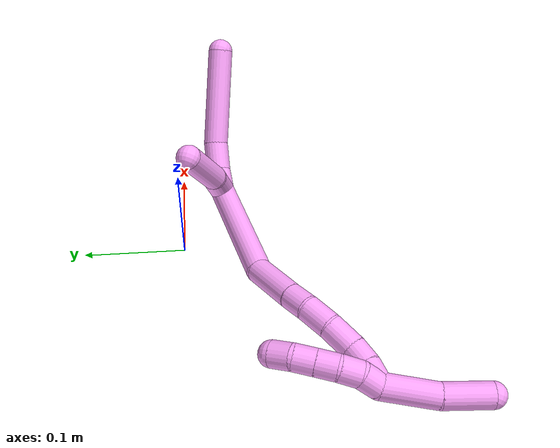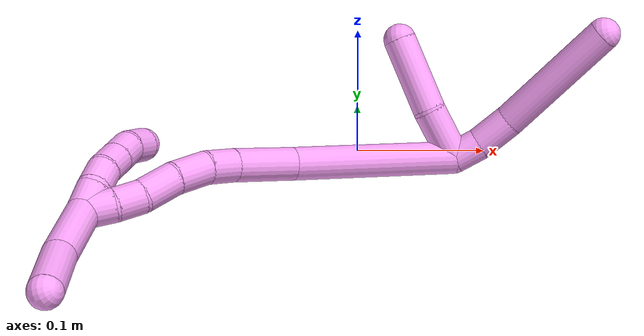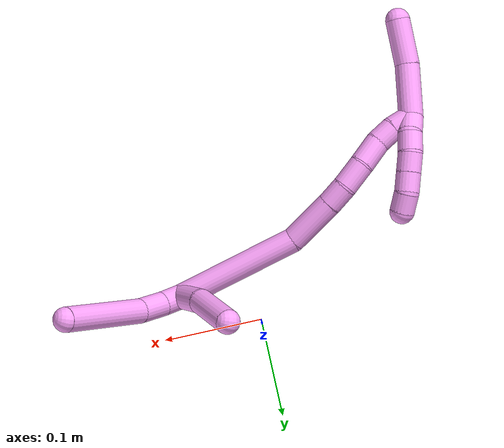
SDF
<sdf version="1.7">
 <world name="default">
  <model name="4">
   <static>0</static>
   <link name="4">
    <collision name="collision-cylinder-e_1_2_8">
     <pose>0.004374 0.002686 -0.009799 -2.87406 0.406539 -1.9848</pose>
     <geometry><cylinder><radius>0.0125</radius><length>0.022123</length></cylinder></geometry>
     <surface>
      <friction><ode><mu>1.16</mu><mu2>1.16</mu2><slip1>0</slip1><slip2>0</slip2></ode></friction>
      <contact><ode><kp>1e+06</kp><kd>1</kd><max_vel>0</max_vel><min_depth>0.001</min_depth></ode></contact>
     </surface>
    </collision>
    <visual name="visual-cylinder-e_1_2_8">
     <pose>0.004374 0.002686 -0.009799 -2.87406 0.406539 -1.9848</pose>
     <geometry><cylinder><radius>0.0125</radius><length>0.022123</length></cylinder></geometry>
     <material><ambient>1 0.65098 0.996078 1</ambient></material>
    </visual>
    <collision name="collision-cylinder-e_2_8_9">
     <pose>0.01523 0.005526 -0.032919 -3.12998 0.45278 -3.0912</pose>
     <geometry><cylinder><radius>0.0125</radius><length>0.029631</length></cylinder></geometry>
     <surface>
      <friction><ode><mu>1.16</mu><mu2>1.16</mu2><slip1>0</slip1><slip2>0</slip2></ode></friction>
      <contact><ode><kp>1e+06</kp><kd>1</kd><max_vel>0</max_vel><min_depth>0.001</min_depth></ode></contact>
     </surface>
    </collision>
    <visual name="visual-cylinder-e_2_8_9">
     <pose>0.01523 0.005526 -0.032919 -3.12998 0.45278 -3.0912</pose>
     <geometry><cylinder><radius>0.0125</radius><length>0.029631</length></cylinder></geometry>
     <material><ambient>1 0.65098 0.996078 1</ambient></material>
    </visual>
    <collision name="collision-cylinder-e_3_9_6">
     <pose>0.040162 -0.002845 -0.090961 2.9532 0.385061 2.23904</pose>
     <geometry><cylinder><radius>0.0125</radius><length>0.098246</length></cylinder></geometry>
     <surface>
      <friction><ode><mu>1.16</mu><mu2>1.16</mu2><slip1>0</slip1><slip2>0</slip2></ode></friction>
      <contact><ode><kp>1e+06</kp><kd>1</kd><max_vel>0</max_vel><min_depth>0.001</min_depth></ode></contact>
     </surface>
    </collision>
    <visual name="visual-cylinder-e_3_9_6">
     <pose>0.040162 -0.002845 -0.090961 2.9532 0.385061 2.23904</pose>
     <geometry><cylinder><radius>0.0125</radius><length>0.098246</length></cylinder></geometry>
     <material><ambient>1 0.65098 0.996078 1</ambient></material>
    </visual>
    <collision name="collision-cylinder-e_1_2_10">
     <pose>0.013643 -0.015471 0.001555 1.47059 0.720204 0.656483</pose>
     <geometry><cylinder><radius>0.0125</radius><length>0.041372</length></cylinder></geometry>
     <surface>
      <friction><ode><mu>1.16</mu><mu2>1.16</mu2><slip1>0</slip1><slip2>0</slip2></ode></friction>
      <contact><ode><kp>1e+06</kp><kd>1</kd><max_vel>0</max_vel><min_depth>0.001</min_depth></ode></contact>
     </surface>
    </collision>
    <visual name="visual-cylinder-e_1_2_10">
     <pose>0.013643 -0.015471 0.001555 1.47059 0.720204 0.656483</pose>
     <geometry><cylinder><radius>0.0125</radius><length>0.041372</length></cylinder></geometry>
     <material><ambient>1 0.65098 0.996078 1</ambient></material>
    </visual>
    <collision name="collision-cylinder-e_2_10_5">
     <pose>0.051037 -0.047877 0.006011 1.40119 0.944549 0.813525</pose>
     <geometry><cylinder><radius>0.0125</radius><length>0.058628</length></cylinder></geometry>
     <surface>
      <friction><ode><mu>1.16</mu><mu2>1.16</mu2><slip1>0</slip1><slip2>0</slip2></ode></friction>
      <contact><ode><kp>1e+06</kp><kd>1</kd><max_vel>0</max_vel><min_depth>0.001</min_depth></ode></contact>
     </surface>
    </collision>
    <visual name="visual-cylinder-e_2_10_5">
     <pose>0.051037 -0.047877 0.006011 1.40119 0.944549 0.813525</pose>
     <geometry><cylinder><radius>0.0125</radius><length>0.058628</length></cylinder></geometry>
     <material><ambient>1 0.65098 0.996078 1</ambient></material>
    </visual>
    <collision name="collision-cylinder-e_1_2_11">
     <pose>-0.011288 -0.044035 0.044019 0.785582 -0.179352 -0.074475</pose>
     <geometry><cylinder><radius>0.0125</radius><length>0.126558</length></cylinder></geometry>
     <surface>
      <friction><ode><mu>1.16</mu><mu2>1.16</mu2><slip1>0</slip1><slip2>0</slip2></ode></friction>
      <contact><ode><kp>1e+06</kp><kd>1</kd><max_vel>0</max_vel><min_depth>0.001</min_depth></ode></contact>
     </surface>
    </collision>
    <visual name="visual-cylinder-e_1_2_11">
     <pose>-0.011288 -0.044035 0.044019 0.785582 -0.179352 -0.074475</pose>
     <geometry><cylinder><radius>0.0125</radius><length>0.126558</length></cylinder></geometry>
     <material><ambient>1 0.65098 0.996078 1</ambient></material>
    </visual>
    <collision name="collision-cylinder-e_2_11_12">
     <pose>-0.030759 -0.10997 0.098962 1.1081 -0.32264 -0.200689</pose>
     <geometry><cylinder><radius>0.0125</radius><length>0.051608</length></cylinder></geometry>
     <surface>
      <friction><ode><mu>1.16</mu><mu2>1.16</mu2><slip1>0</slip1><slip2>0</slip2></ode></friction>
      <contact><ode><kp>1e+06</kp><kd>1</kd><max_vel>0</max_vel><min_depth>0.001</min_depth></ode></contact>
     </surface>
    </collision>
    <visual name="visual-cylinder-e_2_11_12">
     <pose>-0.030759 -0.10997 0.098962 1.1081 -0.32264 -0.200689</pose>
     <geometry><cylinder><radius>0.0125</radius><length>0.051608</length></cylinder></geometry>
     <material><ambient>1 0.65098 0.996078 1</ambient></material>
    </visual>
    <collision name="collision-cylinder-e_3_12_13">
     <pose>-0.043338 -0.141591 0.114428 1.13367 -0.388956 -0.249444</pose>
     <geometry><cylinder><radius>0.0125</radius><length>0.023195</length></cylinder></geometry>
     <surface>
      <friction><ode><mu>1.16</mu><mu2>1.16</mu2><slip1>0</slip1><slip2>0</slip2></ode></friction>
      <contact><ode><kp>1e+06</kp><kd>1</kd><max_vel>0</max_vel><min_depth>0.001</min_depth></ode></contact>
     </surface>
    </collision>
    <visual name="visual-cylinder-e_3_12_13">
     <pose>-0.043338 -0.141591 0.114428 1.13367 -0.388956 -0.249444</pose>
     <geometry><cylinder><radius>0.0125</radius><length>0.023195</length></cylinder></geometry>
     <material><ambient>1 0.65098 0.996078 1</ambient></material>
    </visual>
    <collision name="collision-cylinder-e_4_13_14">
     <pose>-0.055305 -0.161324 0.124969 1.03098 -0.575322 -0.332183</pose>
     <geometry><cylinder><radius>0.0125</radius><length>0.027818</length></cylinder></geometry>
     <surface>
      <friction><ode><mu>1.16</mu><mu2>1.16</mu2><slip1>0</slip1><slip2>0</slip2></ode></friction>
      <contact><ode><kp>1e+06</kp><kd>1</kd><max_vel>0</max_vel><min_depth>0.001</min_depth></ode></contact>
     </surface>
    </collision>
    <visual name="visual-cylinder-e_4_13_14">
     <pose>-0.055305 -0.161324 0.124969 1.03098 -0.575322 -0.332183</pose>
     <geometry><cylinder><radius>0.0125</radius><length>0.027818</length></cylinder></geometry>
     <material><ambient>1 0.65098 0.996078 1</ambient></material>
    </visual>
    <collision name="collision-cylinder-e_5_14_15">
     <pose>-0.072147 -0.179636 0.137807 0.88163 -0.711582 -0.347102</pose>
     <geometry><cylinder><radius>0.0125</radius><length>0.028404</length></cylinder></geometry>
     <surface>
      <friction><ode><mu>1.16</mu><mu2>1.16</mu2><slip1>0</slip1><slip2>0</slip2></ode></friction>
      <contact><ode><kp>1e+06</kp><kd>1</kd><max_vel>0</max_vel><min_depth>0.001</min_depth></ode></contact>
     </surface>
    </collision>
    <visual name="visual-cylinder-e_5_14_15">
     <pose>-0.072147 -0.179636 0.137807 0.88163 -0.711582 -0.347102</pose>
     <geometry><cylinder><radius>0.0125</radius><length>0.028404</length></cylinder></geometry>
     <material><ambient>1 0.65098 0.996078 1</ambient></material>
    </visual>
    <collision name="collision-cylinder-e_6_15_16">
     <pose>-0.086234 -0.194703 0.150734 0.838106 -0.486424 -0.220153</pose>
     <geometry><cylinder><radius>0.0125</radius><length>0.020593</length></cylinder></geometry>
     <surface>
      <friction><ode><mu>1.16</mu><mu2>1.16</mu2><slip1>0</slip1><slip2>0</slip2></ode></friction>
      <contact><ode><kp>1e+06</kp><kd>1</kd><max_vel>0</max_vel><min_depth>0.001</min_depth></ode></contact>
     </surface>
    </collision>
    <visual name="visual-cylinder-e_6_15_16">
     <pose>-0.086234 -0.194703 0.150734 0.838106 -0.486424 -0.220153</pose>
     <geometry><cylinder><radius>0.0125</radius><length>0.020593</length></cylinder></geometry>
     <material><ambient>1 0.65098 0.996078 1</ambient></material>
    </visual>
    <collision name="collision-cylinder-e_7_16_1">
     <pose>-0.094653 -0.208237 0.164586 0.71698 -0.336754 -0.127209</pose>
     <geometry><cylinder><radius>0.0125</radius><length>0.021824</length></cylinder></geometry>
     <surface>
      <friction><ode><mu>1.16</mu><mu2>1.16</mu2><slip1>0</slip1><slip2>0</slip2></ode></friction>
      <contact><ode><kp>1e+06</kp><kd>1</kd><max_vel>0</max_vel><min_depth>0.001</min_depth></ode></contact>
     </surface>
    </collision>
    <visual name="visual-cylinder-e_7_16_1">
     <pose>-0.094653 -0.208237 0.164586 0.71698 -0.336754 -0.127209</pose>
     <geometry><cylinder><radius>0.0125</radius><length>0.021824</length></cylinder></geometry>
     <material><ambient>1 0.65098 0.996078 1</ambient></material>
    </visual>
    <collision name="collision-cylinder-e_1_1_17">
     <pose>-0.088602 -0.213245 0.170441 -2.39687 1.30821 -2.19925</pose>
     <geometry><cylinder><radius>0.0125</radius><length>0.02</length></cylinder></geometry>
     <surface>
      <friction><ode><mu>1.16</mu><mu2>1.16</mu2><slip1>0</slip1><slip2>0</slip2></ode></friction>
      <contact><ode><kp>1e+06</kp><kd>1</kd><max_vel>0</max_vel><min_depth>0.001</min_depth></ode></contact>
     </surface>
    </collision>
    <visual name="visual-cylinder-e_1_1_17">
     <pose>-0.088602 -0.213245 0.170441 -2.39687 1.30821 -2.19925</pose>
     <geometry><cylinder><radius>0.0125</radius><length>0.02</length></cylinder></geometry>
     <material><ambient>1 0.65098 0.996078 1</ambient></material>
    </visual>
    <collision name="collision-cylinder-e_2_17_18">
     <pose>-0.069772 -0.207512 0.168798 -1.50411 1.16113 -1.10076</pose>
     <geometry><cylinder><radius>0.0125</radius><length>0.02</length></cylinder></geometry>
     <surface>
      <friction><ode><mu>1.16</mu><mu2>1.16</mu2><slip1>0</slip1><slip2>0</slip2></ode></friction>
      <contact><ode><kp>1e+06</kp><kd>1</kd><max_vel>0</max_vel><min_depth>0.001</min_depth></ode></contact>
     </surface>
    </collision>
    <visual name="visual-cylinder-e_2_17_18">
     <pose>-0.069772 -0.207512 0.168798 -1.50411 1.16113 -1.10076</pose>
     <geometry><cylinder><radius>0.0125</radius><length>0.02</length></cylinder></geometry>
     <material><ambient>1 0.65098 0.996078 1</ambient></material>
    </visual>
    <collision name="collision-cylinder-e_3_18_19">
     <pose>-0.052642 -0.197498 0.16951 -1.49693 0.92024 -0.862734</pose>
     <geometry><cylinder><radius>0.0125</radius><length>0.02</length></cylinder></geometry>
     <surface>
      <friction><ode><mu>1.16</mu><mu2>1.16</mu2><slip1>0</slip1><slip2>0</slip2></ode></friction>
      <contact><ode><kp>1e+06</kp><kd>1</kd><max_vel>0</max_vel><min_depth>0.001</min_depth></ode></contact>
     </surface>
    </collision>
    <visual name="visual-cylinder-e_3_18_19">
     <pose>-0.052642 -0.197498 0.16951 -1.49693 0.92024 -0.862734</pose>
     <geometry><cylinder><radius>0.0125</radius><length>0.02</length></cylinder></geometry>
     <material><ambient>1 0.65098 0.996078 1</ambient></material>
    </visual>
    <collision name="collision-cylinder-e_4_19_20">
     <pose>-0.036757 -0.185383 0.170449 -1.49008 0.915334 -0.852866</pose>
     <geometry><cylinder><radius>0.0125</radius><length>0.02</length></cylinder></geometry>
     <surface>
      <friction><ode><mu>1.16</mu><mu2>1.16</mu2><slip1>0</slip1><slip2>0</slip2></ode></friction>
      <contact><ode><kp>1e+06</kp><kd>1</kd><max_vel>0</max_vel><min_depth>0.001</min_depth></ode></contact>
     </surface>
    </collision>
    <visual name="visual-cylinder-e_4_19_20">
     <pose>-0.036757 -0.185383 0.170449 -1.49008 0.915334 -0.852866</pose>
     <geometry><cylinder><radius>0.0125</radius><length>0.02</length></cylinder></geometry>
     <material><ambient>1 0.65098 0.996078 1</ambient></material>
    </visual>
    <collision name="collision-cylinder-e_5_20_4">
     <pose>-0.023258 -0.171028 0.171584 -1.49323 0.590899 -0.549017</pose>
     <geometry><cylinder><radius>0.0125</radius><length>0.02</length></cylinder></geometry>
     <surface>
      <friction><ode><mu>1.16</mu><mu2>1.16</mu2><slip1>0</slip1><slip2>0</slip2></ode></friction>
      <contact><ode><kp>1e+06</kp><kd>1</kd><max_vel>0</max_vel><min_depth>0.001</min_depth></ode></contact>
     </surface>
    </collision>
    <visual name="visual-cylinder-e_5_20_4">
     <pose>-0.023258 -0.171028 0.171584 -1.49323 0.590899 -0.549017</pose>
     <geometry><cylinder><radius>0.0125</radius><length>0.02</length></cylinder></geometry>
     <material><ambient>1 0.65098 0.996078 1</ambient></material>
    </visual>
    <collision name="collision-cylinder-e_1_1_21">
     <pose>-0.121606 -0.227632 0.168627 1.85746 -1.05738 -1.32636</pose>
     <geometry><cylinder><radius>0.0125</radius><length>0.053606</length></cylinder></geometry>
     <surface>
      <friction><ode><mu>1.16</mu><mu2>1.16</mu2><slip1>0</slip1><slip2>0</slip2></ode></friction>
      <contact><ode><kp>1e+06</kp><kd>1</kd><max_vel>0</max_vel><min_depth>0.001</min_depth></ode></contact>
     </surface>
    </collision>
    <visual name="visual-cylinder-e_1_1_21">
     <pose>-0.121606 -0.227632 0.168627 1.85746 -1.05738 -1.32636</pose>
     <geometry><cylinder><radius>0.0125</radius><length>0.053606</length></cylinder></geometry>
     <material><ambient>1 0.65098 0.996078 1</ambient></material>
    </visual>
    <collision name="collision-cylinder-e_2_21_3">
     <pose>-0.164163 -0.251117 0.157749 2.15352 -0.975702 -1.55592</pose>
     <geometry><cylinder><radius>0.0125</radius><length>0.046394</length></cylinder></geometry>
     <surface>
      <friction><ode><mu>1.16</mu><mu2>1.16</mu2><slip1>0</slip1><slip2>0</slip2></ode></friction>
      <contact><ode><kp>1e+06</kp><kd>1</kd><max_vel>0</max_vel><min_depth>0.001</min_depth></ode></contact>
     </surface>
    </collision>
    <visual name="visual-cylinder-e_2_21_3">
     <pose>-0.164163 -0.251117 0.157749 2.15352 -0.975702 -1.55592</pose>
     <geometry><cylinder><radius>0.0125</radius><length>0.046394</length></cylinder></geometry>
     <material><ambient>1 0.65098 0.996078 1</ambient></material>
    </visual>
    <collision name="collision-sphere-3">
     <pose>-0.183372 -0.261975 0.150593 0 -0 0</pose>
     <geometry><sphere><radius>0.0125</radius></sphere></geometry>
     <surface>
      <friction><ode><mu>1.16</mu><mu2>1.16</mu2><slip1>0</slip1><slip2>0</slip2></ode></friction>
      <contact><ode><kp>1e+06</kp><kd>1</kd><max_vel>0</max_vel><min_depth>0.001</min_depth></ode></contact>
     </surface>
    </collision>
    <visual name="visual-sphere-3">
     <pose>-0.183372 -0.261975 0.150593 0 -0 0</pose>
     <geometry><sphere><radius>0.0125</radius></sphere></geometry>
     <material><ambient>1 0.65098 0.996078 1</ambient></material>
    </visual>
    <collision name="collision-sphere-21">
     <pose>-0.144954 -0.240259 0.164905 0 -0 0</pose>
     <geometry><sphere><radius>0.0125</radius></sphere></geometry>
     <surface>
      <friction><ode><mu>1.16</mu><mu2>1.16</mu2><slip1>0</slip1><slip2>0</slip2></ode></friction>
      <contact><ode><kp>1e+06</kp><kd>1</kd><max_vel>0</max_vel><min_depth>0.001</min_depth></ode></contact>
     </surface>
    </collision>
    <visual name="visual-sphere-21">
     <pose>-0.144954 -0.240259 0.164905 0 -0 0</pose>
     <geometry><sphere><radius>0.0125</radius></sphere></geometry>
     <material><ambient>1 0.65098 0.996078 1</ambient></material>
    </visual>
    <collision name="collision-sphere-4">
     <pose>-0.017687 -0.162748 0.172227 0 -0 0</pose>
     <geometry><sphere><radius>0.0125</radius></sphere></geometry>
     <surface>
      <friction><ode><mu>1.16</mu><mu2>1.16</mu2><slip1>0</slip1><slip2>0</slip2></ode></friction>
      <contact><ode><kp>1e+06</kp><kd>1</kd><max_vel>0</max_vel><min_depth>0.001</min_depth></ode></contact>
     </surface>
    </collision>
    <visual name="visual-sphere-4">
     <pose>-0.017687 -0.162748 0.172227 0 -0 0</pose>
     <geometry><sphere><radius>0.0125</radius></sphere></geometry>
     <material><ambient>1 0.65098 0.996078 1</ambient></material>
    </visual>
    <collision name="collision-sphere-20">
     <pose>-0.028829 -0.179307 0.17094 0 -0 0</pose>
     <geometry><sphere><radius>0.0125</radius></sphere></geometry>
     <surface>
      <friction><ode><mu>1.16</mu><mu2>1.16</mu2><slip1>0</slip1><slip2>0</slip2></ode></friction>
      <contact><ode><kp>1e+06</kp><kd>1</kd><max_vel>0</max_vel><min_depth>0.001</min_depth></ode></contact>
     </surface>
    </collision>
    <visual name="visual-sphere-20">
     <pose>-0.028829 -0.179307 0.17094 0 -0 0</pose>
     <geometry><sphere><radius>0.0125</radius></sphere></geometry>
     <material><ambient>1 0.65098 0.996078 1</ambient></material>
    </visual>
    <collision name="collision-sphere-5">
     <pose>0.074789 -0.064811 0.008911 0 -0 0</pose>
     <geometry><sphere><radius>0.0125</radius></sphere></geometry>
     <surface>
      <friction><ode><mu>1.16</mu><mu2>1.16</mu2><slip1>0</slip1><slip2>0</slip2></ode></friction>
      <contact><ode><kp>1e+06</kp><kd>1</kd><max_vel>0</max_vel><min_depth>0.001</min_depth></ode></contact>
     </surface>
    </collision>
    <visual name="visual-sphere-5">
     <pose>0.074789 -0.064811 0.008911 0 -0 0</pose>
     <geometry><sphere><radius>0.0125</radius></sphere></geometry>
     <material><ambient>1 0.65098 0.996078 1</ambient></material>
    </visual>
    <collision name="collision-sphere-10">
     <pose>0.027286 -0.030942 0.003111 0 -0 0</pose>
     <geometry><sphere><radius>0.0125</radius></sphere></geometry>
     <surface>
      <friction><ode><mu>1.16</mu><mu2>1.16</mu2><slip1>0</slip1><slip2>0</slip2></ode></friction>
      <contact><ode><kp>1e+06</kp><kd>1</kd><max_vel>0</max_vel><min_depth>0.001</min_depth></ode></contact>
     </surface>
    </collision>
    <visual name="visual-sphere-10">
     <pose>0.027286 -0.030942 0.003111 0 -0 0</pose>
     <geometry><sphere><radius>0.0125</radius></sphere></geometry>
     <material><ambient>1 0.65098 0.996078 1</ambient></material>
    </visual>
    <collision name="collision-sphere-6">
     <pose>0.058614 -0.011371 -0.135681 0 -0 0</pose>
     <geometry><sphere><radius>0.0125</radius></sphere></geometry>
     <surface>
      <friction><ode><mu>1.16</mu><mu2>1.16</mu2><slip1>0</slip1><slip2>0</slip2></ode></friction>
      <contact><ode><kp>1e+06</kp><kd>1</kd><max_vel>0</max_vel><min_depth>0.001</min_depth></ode></contact>
     </surface>
    </collision>
    <visual name="visual-sphere-6">
     <pose>0.058614 -0.011371 -0.135681 0 -0 0</pose>
     <geometry><sphere><radius>0.0125</radius></sphere></geometry>
     <material><ambient>1 0.65098 0.996078 1</ambient></material>
    </visual>
    <collision name="collision-sphere-9">
     <pose>0.021711 0.005681 -0.046241 0 -0 0</pose>
     <geometry><sphere><radius>0.0125</radius></sphere></geometry>
     <surface>
      <friction><ode><mu>1.16</mu><mu2>1.16</mu2><slip1>0</slip1><slip2>0</slip2></ode></friction>
      <contact><ode><kp>1e+06</kp><kd>1</kd><max_vel>0</max_vel><min_depth>0.001</min_depth></ode></contact>
     </surface>
    </collision>
    <visual name="visual-sphere-9">
     <pose>0.021711 0.005681 -0.046241 0 -0 0</pose>
     <geometry><sphere><radius>0.0125</radius></sphere></geometry>
     <material><ambient>1 0.65098 0.996078 1</ambient></material>
    </visual>
    <collision name="collision-sphere-2">
     <geometry><sphere><radius>0.0125</radius></sphere></geometry>
     <surface>
      <friction><ode><mu>1.16</mu><mu2>1.16</mu2><slip1>0</slip1><slip2>0</slip2></ode></friction>
      <contact><ode><kp>1e+06</kp><kd>1</kd><max_vel>0</max_vel><min_depth>0.001</min_depth></ode></contact>
     </surface>
    </collision>
    <visual name="visual-sphere-2">
     <geometry><sphere><radius>0.0125</radius></sphere></geometry>
     <material><ambient>1 0.65098 0.996078 1</ambient></material>
    </visual>
    <collision name="collision-sphere-19">
     <pose>-0.044684 -0.191458 0.169957 0 -0 0</pose>
     <geometry><sphere><radius>0.0125</radius></sphere></geometry>
     <surface>
      <friction><ode><mu>1.16</mu><mu2>1.16</mu2><slip1>0</slip1><slip2>0</slip2></ode></friction>
      <contact><ode><kp>1e+06</kp><kd>1</kd><max_vel>0</max_vel><min_depth>0.001</min_depth></ode></contact>
     </surface>
    </collision>
    <visual name="visual-sphere-19">
     <pose>-0.044684 -0.191458 0.169957 0 -0 0</pose>
     <geometry><sphere><radius>0.0125</radius></sphere></geometry>
     <material><ambient>1 0.65098 0.996078 1</ambient></material>
    </visual>
    <collision name="collision-sphere-8">
     <pose>0.008748 0.005372 -0.019597 0 -0 0</pose>
     <geometry><sphere><radius>0.0125</radius></sphere></geometry>
     <surface>
      <friction><ode><mu>1.16</mu><mu2>1.16</mu2><slip1>0</slip1><slip2>0</slip2></ode></friction>
      <contact><ode><kp>1e+06</kp><kd>1</kd><max_vel>0</max_vel><min_depth>0.001</min_depth></ode></contact>
     </surface>
    </collision>
    <visual name="visual-sphere-8">
     <pose>0.008748 0.005372 -0.019597 0 -0 0</pose>
     <geometry><sphere><radius>0.0125</radius></sphere></geometry>
     <material><ambient>1 0.65098 0.996078 1</ambient></material>
    </visual>
    <collision name="collision-sphere-11">
     <pose>-0.022577 -0.088071 0.088038 0 -0 0</pose>
     <geometry><sphere><radius>0.0125</radius></sphere></geometry>
     <surface>
      <friction><ode><mu>1.16</mu><mu2>1.16</mu2><slip1>0</slip1><slip2>0</slip2></ode></friction>
      <contact><ode><kp>1e+06</kp><kd>1</kd><max_vel>0</max_vel><min_depth>0.001</min_depth></ode></contact>
     </surface>
    </collision>
    <visual name="visual-sphere-11">
     <pose>-0.022577 -0.088071 0.088038 0 -0 0</pose>
     <geometry><sphere><radius>0.0125</radius></sphere></geometry>
     <material><ambient>1 0.65098 0.996078 1</ambient></material>
    </visual>
    <collision name="collision-sphere-12">
     <pose>-0.03894 -0.131869 0.109885 0 -0 0</pose>
     <geometry><sphere><radius>0.0125</radius></sphere></geometry>
     <surface>
      <friction><ode><mu>1.16</mu><mu2>1.16</mu2><slip1>0</slip1><slip2>0</slip2></ode></friction>
      <contact><ode><kp>1e+06</kp><kd>1</kd><max_vel>0</max_vel><min_depth>0.001</min_depth></ode></contact>
     </surface>
    </collision>
    <visual name="visual-sphere-12">
     <pose>-0.03894 -0.131869 0.109885 0 -0 0</pose>
     <geometry><sphere><radius>0.0125</radius></sphere></geometry>
     <material><ambient>1 0.65098 0.996078 1</ambient></material>
    </visual>
    <collision name="collision-sphere-13">
     <pose>-0.047736 -0.151314 0.118971 0 -0 0</pose>
     <geometry><sphere><radius>0.0125</radius></sphere></geometry>
     <surface>
      <friction><ode><mu>1.16</mu><mu2>1.16</mu2><slip1>0</slip1><slip2>0</slip2></ode></friction>
      <contact><ode><kp>1e+06</kp><kd>1</kd><max_vel>0</max_vel><min_depth>0.001</min_depth></ode></contact>
     </surface>
    </collision>
    <visual name="visual-sphere-13">
     <pose>-0.047736 -0.151314 0.118971 0 -0 0</pose>
     <geometry><sphere><radius>0.0125</radius></sphere></geometry>
     <material><ambient>1 0.65098 0.996078 1</ambient></material>
    </visual>
    <collision name="collision-sphere-14">
     <pose>-0.062873 -0.171335 0.130968 0 -0 0</pose>
     <geometry><sphere><radius>0.0125</radius></sphere></geometry>
     <surface>
      <friction><ode><mu>1.16</mu><mu2>1.16</mu2><slip1>0</slip1><slip2>0</slip2></ode></friction>
      <contact><ode><kp>1e+06</kp><kd>1</kd><max_vel>0</max_vel><min_depth>0.001</min_depth></ode></contact>
     </surface>
    </collision>
    <visual name="visual-sphere-14">
     <pose>-0.062873 -0.171335 0.130968 0 -0 0</pose>
     <geometry><sphere><radius>0.0125</radius></sphere></geometry>
     <material><ambient>1 0.65098 0.996078 1</ambient></material>
    </visual>
    <collision name="collision-sphere-15">
     <pose>-0.081421 -0.187937 0.144646 0 -0 0</pose>
     <geometry><sphere><radius>0.0125</radius></sphere></geometry>
     <surface>
      <friction><ode><mu>1.16</mu><mu2>1.16</mu2><slip1>0</slip1><slip2>0</slip2></ode></friction>
      <contact><ode><kp>1e+06</kp><kd>1</kd><max_vel>0</max_vel><min_depth>0.001</min_depth></ode></contact>
     </surface>
    </collision>
    <visual name="visual-sphere-15">
     <pose>-0.081421 -0.187937 0.144646 0 -0 0</pose>
     <geometry><sphere><radius>0.0125</radius></sphere></geometry>
     <material><ambient>1 0.65098 0.996078 1</ambient></material>
    </visual>
    <collision name="collision-sphere-16">
     <pose>-0.091048 -0.201469 0.156823 0 -0 0</pose>
     <geometry><sphere><radius>0.0125</radius></sphere></geometry>
     <surface>
      <friction><ode><mu>1.16</mu><mu2>1.16</mu2><slip1>0</slip1><slip2>0</slip2></ode></friction>
      <contact><ode><kp>1e+06</kp><kd>1</kd><max_vel>0</max_vel><min_depth>0.001</min_depth></ode></contact>
     </surface>
    </collision>
    <visual name="visual-sphere-16">
     <pose>-0.091048 -0.201469 0.156823 0 -0 0</pose>
     <geometry><sphere><radius>0.0125</radius></sphere></geometry>
     <material><ambient>1 0.65098 0.996078 1</ambient></material>
    </visual>
    <collision name="collision-sphere-1">
     <pose>-0.098259 -0.215005 0.17235 0 -0 0</pose>
     <geometry><sphere><radius>0.0125</radius></sphere></geometry>
     <surface>
      <friction><ode><mu>1.16</mu><mu2>1.16</mu2><slip1>0</slip1><slip2>0</slip2></ode></friction>
      <contact><ode><kp>1e+06</kp><kd>1</kd><max_vel>0</max_vel><min_depth>0.001</min_depth></ode></contact>
     </surface>
    </collision>
    <visual name="visual-sphere-1">
     <pose>-0.098259 -0.215005 0.17235 0 -0 0</pose>
     <geometry><sphere><radius>0.0125</radius></sphere></geometry>
     <material><ambient>1 0.65098 0.996078 1</ambient></material>
    </visual>
    <collision name="collision-sphere-18">
     <pose>-0.060599 -0.203538 0.169063 0 -0 0</pose>
     <geometry><sphere><radius>0.0125</radius></sphere></geometry>
     <surface>
      <friction><ode><mu>1.16</mu><mu2>1.16</mu2><slip1>0</slip1><slip2>0</slip2></ode></friction>
      <contact><ode><kp>1e+06</kp><kd>1</kd><max_vel>0</max_vel><min_depth>0.001</min_depth></ode></contact>
     </surface>
    </collision>
    <visual name="visual-sphere-18">
     <pose>-0.060599 -0.203538 0.169063 0 -0 0</pose>
     <geometry><sphere><radius>0.0125</radius></sphere></geometry>
     <material><ambient>1 0.65098 0.996078 1</ambient></material>
    </visual>
    <collision name="collision-sphere-17">
     <pose>-0.078945 -0.211486 0.168532 0 -0 0</pose>
     <geometry><sphere><radius>0.0125</radius></sphere></geometry>
     <surface>
      <friction><ode><mu>1.16</mu><mu2>1.16</mu2><slip1>0</slip1><slip2>0</slip2></ode></friction>
      <contact><ode><kp>1e+06</kp><kd>1</kd><max_vel>0</max_vel><min_depth>0.001</min_depth></ode></contact>
     </surface>
    </collision>
    <visual name="visual-sphere-17">
     <pose>-0.078945 -0.211486 0.168532 0 -0 0</pose>
     <geometry><sphere><radius>0.0125</radius></sphere></geometry>
     <material><ambient>1 0.65098 0.996078 1</ambient></material>
    </visual>
    <inertial>
     <pose>-0.030608 -0.106035 0.068108 0 -0 0</pose>
     <mass>0.75</mass>
     <inertia>
      <ixx>0.000196</ixx>
      <ixy>0</ixy>
      <ixz>0</ixz>
      <iyy>0.000252</iyy>
      <iyz>0</iyz>
      <izz>0.000183</izz>
     </inertia>
    </inertial>
   </link>
   <pose>0.073888 -0.040577 0.011148 -2.13997 -0.647367 1.54864</pose>
  </model>
 </world>
</sdf>
